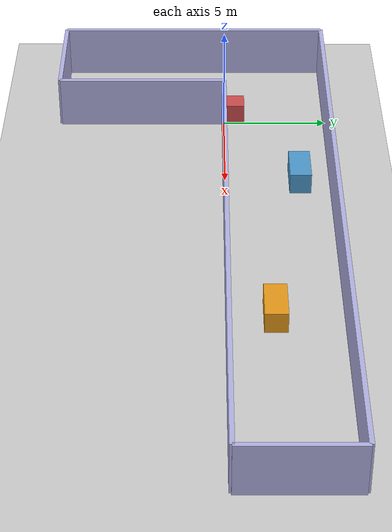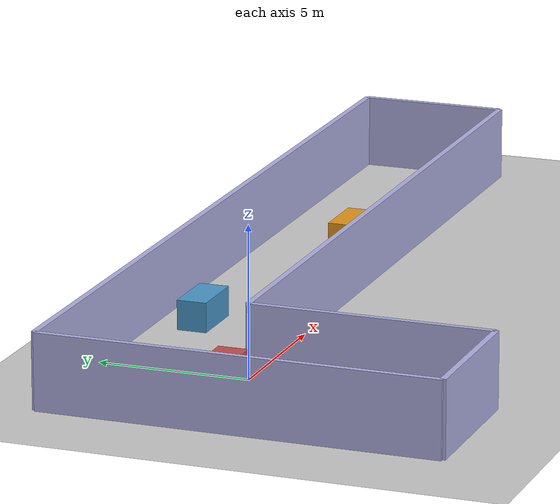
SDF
<sdf version="1.6">
 <world name="large_hallway">
  <physics type="ode">
   <max_step_size>0.01</max_step_size>
   <real_time_factor>1</real_time_factor>
   <real_time_update_rate>100</real_time_update_rate>
  </physics>
  <light name="sun" type="directional">
   <pose>0 0 10 0 0 0</pose>
   <diffuse>0.8 0.8 0.8 1</diffuse>
   <specular>0.2 0.2 0.2 1</specular>
   <attenuation>
    <range>1000</range>
    <constant>0.9</constant>
    <linear>0.01</linear>
    <quadratic>0.001</quadratic>
   </attenuation>
   <direction>-0.5 0.1 -0.9</direction>
  </light>
  <model name="ground_plane">
   <static>true</static>
   <link name="link">
    <collision name="collision">
     <geometry><plane><normal>0 0 1</normal><size>100 100</size></plane></geometry>
    </collision>
    <visual name="visual">
     <geometry><plane><normal>0 0 1</normal><size>100 100</size></plane></geometry>
     <material><ambient>0.8 0.8 0.8 1</ambient><diffuse>0.8 0.8 0.8 1</diffuse></material>
    </visual>
   </link>
  </model>
  <model name="right_wall_1">
   <static>true</static>
   <pose>0 -4 1.25 0 0 0</pose>
   <link name="link">
    <collision name="collision"><geometry><box><size>0.2 8 2.5</size></box></geometry></collision>
    <visual name="visual">
     <geometry><box><size>0.2 8 2.5</size></box></geometry>
     <material><ambient>0.7 0.7 0.9 1</ambient><diffuse>0.7 0.7 0.9 1</diffuse></material>
    </visual>
   </link>
  </model>
  <model name="bottom_wall_1">
   <static>true</static>
   <pose>12.5 0 1.25 0 0 0</pose>
   <link name="link">
    <collision name="collision"><geometry><box><size>25 0.2 2.5</size></box></geometry></collision>
    <visual name="visual">
     <geometry><box><size>25 0.2 2.5</size></box></geometry>
     <material><ambient>0.7 0.7 0.9 1</ambient><diffuse>0.7 0.7 0.9 1</diffuse></material>
    </visual>
   </link>
  </model>
  <model name="right_wall_2">
   <static>true</static>
   <pose>25 2.5 1.25 0 0 0</pose>
   <link name="link">
    <collision name="collision"><geometry><box><size>0.2 5 2.5</size></box></geometry></collision>
    <visual name="visual">
     <geometry><box><size>0.2 5 2.5</size></box></geometry>
     <material><ambient>0.7 0.7 0.9 1</ambient><diffuse>0.7 0.7 0.9 1</diffuse></material>
    </visual>
   </link>
  </model>
  <model name="top_wall">
   <static>true</static>
   <pose>10 5 1.25 0 0 0</pose>
   <link name="link">
    <collision name="collision"><geometry><box><size>30 0.2 2.5</size></box></geometry></collision>
    <visual name="visual">
     <geometry><box><size>30 0.2 2.5</size></box></geometry>
     <material><ambient>0.7 0.7 0.9 1</ambient><diffuse>0.7 0.7 0.9 1</diffuse></material>
    </visual>
   </link>
  </model>
  <model name="left_wall">
   <static>true</static>
   <pose>-5 -1.5 1.25 0 0 0</pose>
   <link name="link">
    <collision name="collision"><geometry><box><size>0.2 13 2.5</size></box></geometry></collision>
    <visual name="visual">
     <geometry><box><size>0.2 13 2.5</size></box></geometry>
     <material><ambient>0.7 0.7 0.9 1</ambient><diffuse>0.7 0.7 0.9 1</diffuse></material>
    </visual>
   </link>
  </model>
  <model name="bottom_wall_2">
   <static>true</static>
   <pose>-2.5 -8 1.25 0 0 0</pose>
   <link name="link">
    <collision name="collision"><geometry><box><size>5 0.2 2.5</size></box></geometry></collision>
    <visual name="visual">
     <geometry><box><size>5 0.2 2.5</size></box></geometry>
     <material><ambient>0.7 0.7 0.9 1</ambient><diffuse>0.7 0.7 0.9 1</diffuse></material>
    </visual>
   </link>
  </model>
  <model name="box1">
   <static>true</static>
   <pose>-0.5 0.5 0.5 0 0 0</pose>
   <link name="link">
    <collision name="collision"><geometry><box><size>1 1 1.0</size></box></geometry></collision>
    <visual name="visual">
     <geometry><box><size>1 1 1.0</size></box></geometry>
     <material><ambient>0.8 0.3 0.3 1</ambient><diffuse>0.8 0.3 0.3 1</diffuse></material>
    </visual>
   </link>
  </model>
  <model name="box2">
   <static>true</static>
   <pose>5 3.5 0.5 0 0 0</pose>
   <link name="link">
    <collision name="collision"><geometry><box><size>2 1 1.0</size></box></geometry></collision>
    <visual name="visual">
     <geometry><box><size>2 1 1.0</size></box></geometry>
     <material><ambient>0.3 0.6 0.8 1</ambient><diffuse>0.3 0.6 0.8 1</diffuse></material>
    </visual>
   </link>
  </model>
  <model name="moving_box">
   <pose>15 2 0.5 0 0 0</pose>
   <static>false</static>
   <link name="link">
    <inertial>
     <mass>10.0</mass>
     <inertia><ixx>0.1</ixx><ixy>0</ixy><ixz>0</ixz><iyy>0.1</iyy><iyz>0</iyz><izz>0.1</izz></inertia>
    </inertial>
    <collision name="collision"><geometry><box><size>2 1 1.0</size></box></geometry></collision>
    <visual name="visual">
     <geometry><box><size>2 1 1.0</size></box></geometry>
     <material><ambient>0.9 0.6 0.1 1</ambient><diffuse>0.9 0.6 0.1 1</diffuse></material>
    </visual>
   </link>
   <plugin name="moving_box_planar_move" filename="libgazebo_ros_planar_move.so">
    <ros><namespace>moving_box</namespace></ros>
    <update_rate>50</update_rate>
    <publish_odom>false</publish_odom>
    <publish_odom_tf>false</publish_odom_tf>
   </plugin>
  </model>
 </world>
</sdf>
